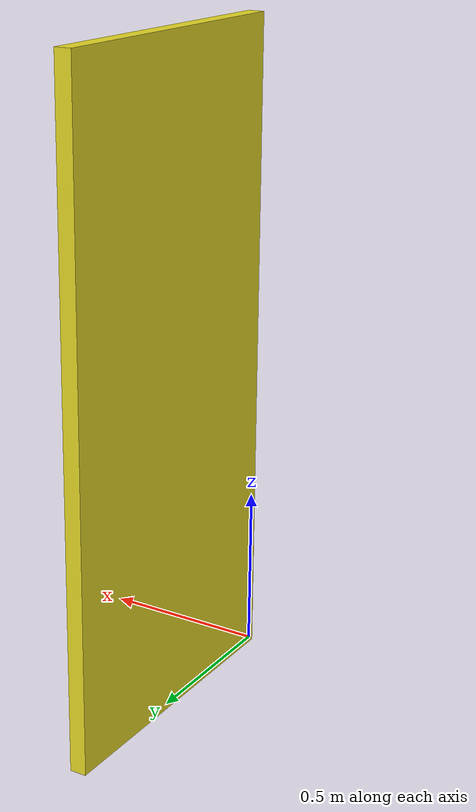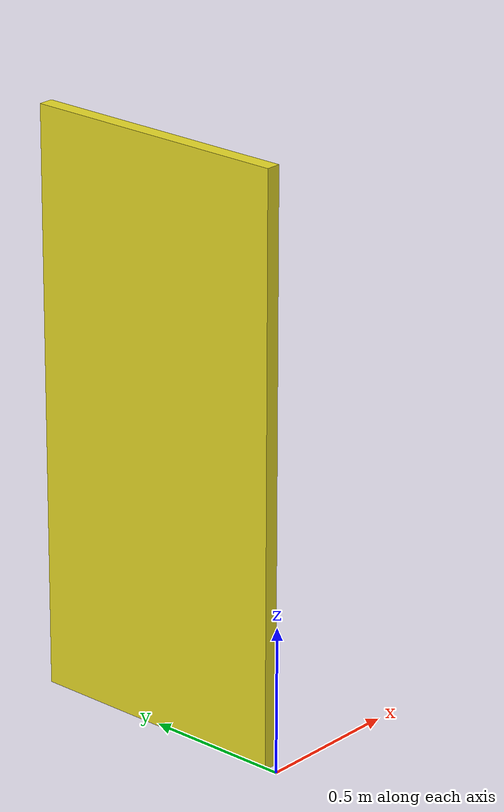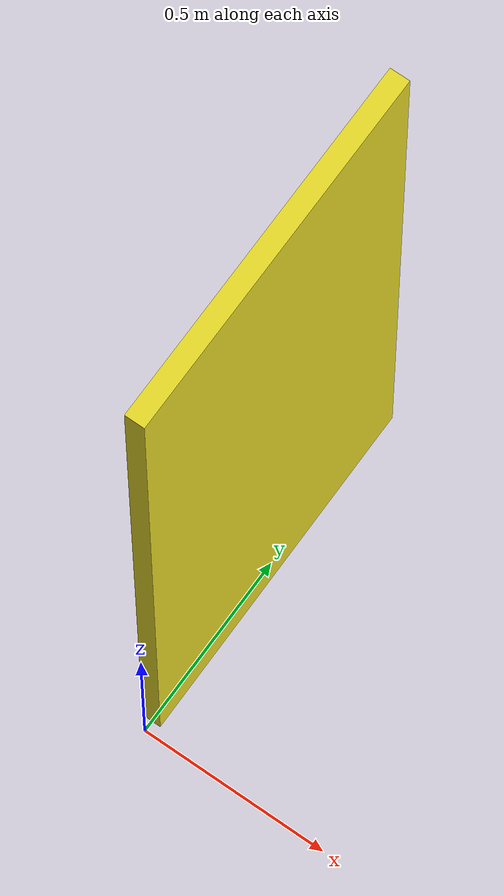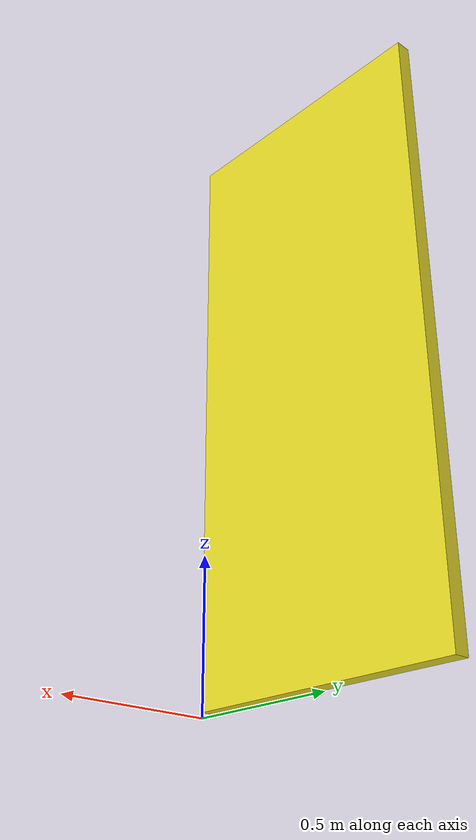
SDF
<?xml version="1.0"?>
<sdf version="1.4">
<model name="door:door">
<pose>0 0 0 0 0 0</pose>
<static>false</static>

<link name="door:door-body">
<pose>0.0 0.49000000000000005 1.0 0.0 -0.0 0.0</pose>
<inertial>
<mass>1.0</mass>
<inertia>
<ixx>0.4069</ixx>
<ixy>0.0</ixy>
<ixz>0.0</ixz>
<iyy>0.3322</iyy>
<iyz>0.0</iyz>
<izz>0.0751</izz>
</inertia>
</inertial>
<collision name="collision">
<geometry>
<box>
<size>0.05 0.93 1.98</size>
</box>
</geometry>
</collision>
<visual name="visual">
<geometry>
<box>
<size>0.05 0.93 1.98</size>
</box>
</geometry><material><script><name>Gazebo/DarkYellow</name></script></material></visual>
</link>

<joint type="revolute" name="door:joint-door-hinge">
<pose frame="door:door-hinge">-0.025 0.025 0.995 0.0 -0.0 0.0</pose>
<child>door:door-body</child>
<parent>door:door-hinge</parent>
<axis>
<xyz>0 0 1</xyz>

<limit>
<lower>0.0</lower>
<upper>2.0</upper>
</limit>

</axis>
</joint>

</model>
</sdf>
